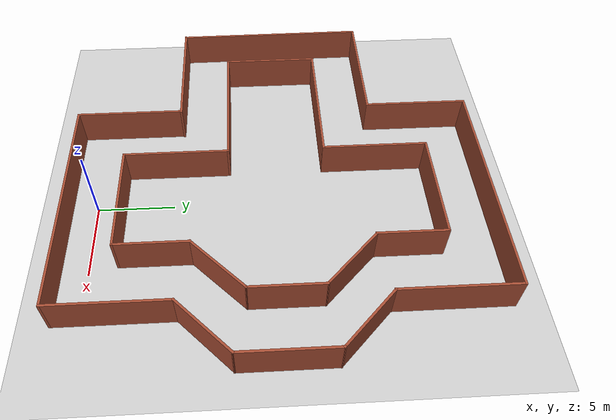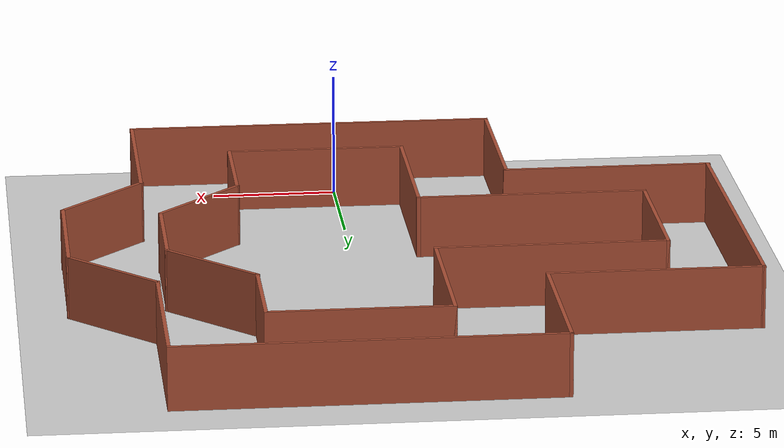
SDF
<sdf version="1.6">
 <world name="default">
  <light name="sun" type="directional">
   <pose>0 0 10 0 -0 0</pose>
   <diffuse>0.8 0.8 0.8 1</diffuse>
   <specular>0.1 0.1 0.1 1</specular>
   <attenuation>
    <range>1000</range>
    <constant>0.9</constant>
    <linear>0.01</linear>
    <quadratic>0.001</quadratic>
   </attenuation>
   <direction>-0.5 0.5 -1</direction>
  </light>
  <model name="ground_plane">
   <static>1</static>
   <link name="link">
    <collision name="collision">
     <geometry><plane><normal>0 0 1</normal><size>100 100</size></plane></geometry>
     <surface><friction><ode><mu>100</mu><mu2>50</mu2></ode></friction></surface>
    </collision>
    <visual name="visual">
     <cast_shadows>0</cast_shadows>
     <geometry><plane><normal>0 0 1</normal><size>100 100</size></plane></geometry>
     <material>
      <script><uri>file://media/materials/scripts/gazebo.material</uri><name>Gazebo/Grey</name></script>
     </material>
    </visual>
   </link>
  </model>
  <gravity>0 0 -9.8</gravity>
  <magnetic_field>6e-06 2.3e-05 -4.2e-05</magnetic_field>
  <atmosphere type="adiabatic"/>
  <physics name="default_physics" default="0" type="ode">
   <max_step_size>0.001</max_step_size>
   <real_time_factor>1</real_time_factor>
   <real_time_update_rate>1000</real_time_update_rate>
  </physics>
  <scene><ambient>0.4 0.4 0.4 1</ambient><background>0.7 0.7 0.7 1</background><shadows>1</shadows></scene>
  <spherical_coordinates>
   <surface_model>EARTH_WGS84</surface_model>
   <latitude_deg>0</latitude_deg>
   <longitude_deg>0</longitude_deg>
   <elevation>0</elevation>
   <heading_deg>0</heading_deg>
  </spherical_coordinates>
  <model name="Labirent">
   <pose>-1.6642 11.8093 0 0 -0 0</pose>
   <link name="Wall_10">
    <collision name="Wall_10_Collision">
     <geometry><box><size>4.75 0.15 2.5</size></box></geometry>
     <pose>0 0 1.25 0 -0 0</pose>
    </collision>
    <visual name="Wall_10_Visual">
     <pose>0 0 1.25 0 -0 0</pose>
     <geometry><box><size>4.75 0.15 2.5</size></box></geometry>
     <material>
      <script><uri>file://media/materials/scripts/gazebo.material</uri><name>Gazebo/Bricks</name></script>
      <ambient>1 1 1 1</ambient>
     </material>
    </visual>
    <pose>11.5847 4.55135 0 0 0 -0.785398</pose>
   </link>
   <link name="Wall_11">
    <collision name="Wall_11_Collision">
     <geometry><box><size>6 0.15 2.5</size></box></geometry>
     <pose>0 0 1.25 0 -0 0</pose>
    </collision>
    <visual name="Wall_11_Visual">
     <pose>0 0 1.25 0 -0 0</pose>
     <geometry><box><size>6 0.15 2.5</size></box></geometry>
     <material>
      <script><uri>file://media/materials/scripts/gazebo.material</uri><name>Gazebo/Bricks</name></script>
      <ambient>1 1 1 1</ambient>
     </material>
    </visual>
    <pose>13.211 1e-06 0 0 0 -1.5708</pose>
   </link>
   <link name="Wall_12">
    <collision name="Wall_12_Collision">
     <geometry><box><size>4.75 0.15 2.5</size></box></geometry>
     <pose>0 0 1.25 0 -0 0</pose>
    </collision>
    <visual name="Wall_12_Visual">
     <pose>0 0 1.25 0 -0 0</pose>
     <geometry><box><size>4.75 0.15 2.5</size></box></geometry>
     <material>
      <script><uri>file://media/materials/scripts/gazebo.material</uri><name>Gazebo/Bricks</name></script>
      <ambient>1 1 1 1</ambient>
     </material>
    </visual>
    <pose>11.5847 -4.55135 0 0 0 -2.35619</pose>
   </link>
   <link name="Wall_13">
    <collision name="Wall_13_Collision">
     <geometry><box><size>7.5 0.15 2.5</size></box></geometry>
     <pose>0 0 1.25 0 -0 0</pose>
    </collision>
    <visual name="Wall_13_Visual">
     <pose>0 0 1.25 0 -0 0</pose>
     <geometry><box><size>7.5 0.15 2.5</size></box></geometry>
     <material>
      <script><uri>file://media/materials/scripts/gazebo.material</uri><name>Gazebo/Bricks</name></script>
      <ambient>1 1 1 1</ambient>
     </material>
    </visual>
    <pose>9.95835 -9.85269 0 0 0 -1.5708</pose>
   </link>
   <link name="Wall_14">
    <collision name="Wall_14_Collision">
     <geometry><box><size>15 0.15 2.5</size></box></geometry>
     <pose>0 0 1.25 0 -0 0</pose>
    </collision>
    <visual name="Wall_14_Visual">
     <pose>0 0 1.25 0 -0 0</pose>
     <geometry><box><size>15 0.15 2.5</size></box></geometry>
     <material>
      <script><uri>file://media/materials/scripts/gazebo.material</uri><name>Gazebo/Bricks</name></script>
      <ambient>1 1 1 1</ambient>
     </material>
    </visual>
    <pose>2.53335 -13.5277 0 0 -0 3.14159</pose>
   </link>
   <link name="Wall_15">
    <collision name="Wall_15_Collision">
     <geometry><box><size>7.25 0.15 2.5</size></box></geometry>
     <pose>0 0 1.25 0 -0 0</pose>
    </collision>
    <visual name="Wall_15_Visual">
     <pose>0 0 1.25 0 -0 0</pose>
     <geometry><box><size>7.25 0.15 2.5</size></box></geometry>
     <material>
      <script><uri>file://media/materials/scripts/gazebo.material</uri><name>Gazebo/Bricks</name></script>
      <ambient>1 1 1 1</ambient>
     </material>
    </visual>
    <pose>-4.89165 -9.97769 0 0 -0 1.5708</pose>
   </link>
   <link name="Wall_17">
    <collision name="Wall_17_Collision">
     <geometry><box><size>6.5 0.15 2.5</size></box></geometry>
     <pose>0 0 1.25 0 -0 0</pose>
    </collision>
    <visual name="Wall_17_Visual">
     <pose>0 0 1.25 0 -0 0</pose>
     <geometry><box><size>6.5 0.15 2.5</size></box></geometry>
     <material>
      <script><uri>file://media/materials/scripts/gazebo.material</uri><name>Gazebo/Bricks</name></script>
      <ambient>1 1 1 1</ambient>
     </material>
    </visual>
    <pose>-10.0695 0.024492 0 0 -0 1.5708</pose>
   </link>
   <link name="Wall_18">
    <collision name="Wall_18_Collision">
     <geometry><box><size>9.25 0.15 2.5</size></box></geometry>
     <pose>0 0 1.25 0 -0 0</pose>
    </collision>
    <visual name="Wall_18_Visual">
     <pose>0 0 1.25 0 -0 0</pose>
     <geometry><box><size>9.25 0.15 2.5</size></box></geometry>
     <material>
      <script><uri>file://media/materials/scripts/gazebo.material</uri><name>Gazebo/Bricks</name></script>
      <ambient>1 1 1 1</ambient>
     </material>
    </visual>
    <pose>-5.51953 3.19949 0 0 -0 0</pose>
   </link>
   <link name="Wall_19">
    <collision name="Wall_19_Collision">
     <geometry><box><size>7 0.15 2.5</size></box></geometry>
     <pose>0 0 1.25 0 -0 0</pose>
    </collision>
    <visual name="Wall_19_Visual">
     <pose>0 0 1.25 0 -0 0</pose>
     <geometry><box><size>7 0.15 2.5</size></box></geometry>
     <material>
      <script><uri>file://media/materials/scripts/gazebo.material</uri><name>Gazebo/Bricks</name></script>
      <ambient>1 1 1 1</ambient>
     </material>
    </visual>
    <pose>-0.969534 6.62449 0 0 -0 1.5708</pose>
   </link>
   <link name="Wall_2">
    <collision name="Wall_2_Collision">
     <geometry><box><size>8.5 0.15 2.5</size></box></geometry>
     <pose>0 0 1.25 0 -0 0</pose>
    </collision>
    <visual name="Wall_2_Visual">
     <pose>0 0 1.25 0 -0 0</pose>
     <geometry><box><size>8.5 0.15 2.5</size></box></geometry>
     <material>
      <script><uri>file://media/materials/scripts/gazebo.material</uri><name>Gazebo/Bricks</name></script>
      <ambient>1 1 1 1</ambient>
     </material>
    </visual>
    <pose>-9.02619 -6.42231 0 0 -0 3.14159</pose>
   </link>
   <link name="Wall_20">
    <collision name="Wall_20_Collision">
     <geometry><box><size>7.25 0.15 2.5</size></box></geometry>
     <pose>0 0 1.25 0 -0 0</pose>
    </collision>
    <visual name="Wall_20_Visual">
     <pose>0 0 1.25 0 -0 0</pose>
     <geometry><box><size>7.25 0.15 2.5</size></box></geometry>
     <material>
      <script><uri>file://media/materials/scripts/gazebo.material</uri><name>Gazebo/Bricks</name></script>
      <ambient>1 1 1 1</ambient>
     </material>
    </visual>
    <pose>2.58047 10.0495 0 0 -0 0</pose>
   </link>
   <link name="Wall_21">
    <collision name="Wall_21_Collision">
     <geometry><box><size>4.5 0.15 2.5</size></box></geometry>
     <pose>0 0 1.25 0 -0 0</pose>
    </collision>
    <visual name="Wall_21_Visual">
     <pose>0 0 1.25 0 -0 0</pose>
     <geometry><box><size>4.5 0.15 2.5</size></box></geometry>
     <material>
      <script><uri>file://media/materials/scripts/gazebo.material</uri><name>Gazebo/Bricks</name></script>
      <ambient>1 1 1 1</ambient>
     </material>
    </visual>
    <pose>6.13047 7.87449 0 0 0 -1.5708</pose>
   </link>
   <link name="Wall_22">
    <collision name="Wall_22_Collision">
     <geometry><box><size>4.75 0.15 2.5</size></box></geometry>
     <pose>0 0 1.25 0 -0 0</pose>
    </collision>
    <visual name="Wall_22_Visual">
     <pose>0 0 1.25 0 -0 0</pose>
     <geometry><box><size>4.75 0.15 2.5</size></box></geometry>
     <material>
      <script><uri>file://media/materials/scripts/gazebo.material</uri><name>Gazebo/Bricks</name></script>
      <ambient>1 1 1 1</ambient>
     </material>
    </visual>
    <pose>7.75681 4.07315 0 0 0 -0.785398</pose>
   </link>
   <link name="Wall_23">
    <collision name="Wall_23_Collision">
     <geometry><box><size>4.75 0.15 2.5</size></box></geometry>
     <pose>0 0 1.25 0 -0 0</pose>
    </collision>
    <visual name="Wall_23_Visual">
     <pose>0 0 1.25 0 -0 0</pose>
     <geometry><box><size>4.75 0.15 2.5</size></box></geometry>
     <material>
      <script><uri>file://media/materials/scripts/gazebo.material</uri><name>Gazebo/Bricks</name></script>
      <ambient>1 1 1 1</ambient>
     </material>
    </visual>
    <pose>9.38316 0.146801 0 0 0 -1.5708</pose>
   </link>
   <link name="Wall_24">
    <collision name="Wall_24_Collision">
     <geometry><box><size>4.75 0.15 2.5</size></box></geometry>
     <pose>0 0 1.25 0 -0 0</pose>
    </collision>
    <visual name="Wall_24_Visual">
     <pose>0 0 1.25 0 -0 0</pose>
     <geometry><box><size>4.75 0.15 2.5</size></box></geometry>
     <material>
      <script><uri>file://media/materials/scripts/gazebo.material</uri><name>Gazebo/Bricks</name></script>
      <ambient>1 1 1 1</ambient>
     </material>
    </visual>
    <pose>7.75681 -3.77955 0 0 0 -2.35619</pose>
   </link>
   <link name="Wall_25">
    <collision name="Wall_25_Collision">
     <geometry><box><size>4.75 0.15 2.5</size></box></geometry>
     <pose>0 0 1.25 0 -0 0</pose>
    </collision>
    <visual name="Wall_25_Visual">
     <pose>0 0 1.25 0 -0 0</pose>
     <geometry><box><size>4.75 0.15 2.5</size></box></geometry>
     <material>
      <script><uri>file://media/materials/scripts/gazebo.material</uri><name>Gazebo/Bricks</name></script>
      <ambient>1 1 1 1</ambient>
     </material>
    </visual>
    <pose>6.13047 -7.70589 0 0 0 -1.5708</pose>
   </link>
   <link name="Wall_27">
    <collision name="Wall_27_Collision">
     <geometry><box><size>7.25 0.15 2.5</size></box></geometry>
     <pose>0 0 1.25 0 -0 0</pose>
    </collision>
    <visual name="Wall_27_Visual">
     <pose>0 0 1.25 0 -0 0</pose>
     <geometry><box><size>7.25 0.15 2.5</size></box></geometry>
     <material>
      <script><uri>file://media/materials/scripts/gazebo.material</uri><name>Gazebo/Bricks</name></script>
      <ambient>1 1 1 1</ambient>
     </material>
    </visual>
    <pose>2.58047 -10.0059 0 0 -0 3.14159</pose>
   </link>
   <link name="Wall_28">
    <collision name="Wall_28_Collision">
     <geometry><box><size>7 0.15 2.5</size></box></geometry>
     <pose>0 0 1.25 0 -0 0</pose>
    </collision>
    <visual name="Wall_28_Visual">
     <pose>0 0 1.25 0 -0 0</pose>
     <geometry><box><size>7 0.15 2.5</size></box></geometry>
     <material>
      <script><uri>file://media/materials/scripts/gazebo.material</uri><name>Gazebo/Bricks</name></script>
      <ambient>1 1 1 1</ambient>
     </material>
    </visual>
    <pose>-0.969534 -6.58089 0 0 -0 1.5708</pose>
   </link>
   <link name="Wall_29">
    <collision name="Wall_29_Collision">
     <geometry><box><size>9.25 0.15 2.5</size></box></geometry>
     <pose>0 0 1.25 0 -0 0</pose>
    </collision>
    <visual name="Wall_29_Visual">
     <pose>0 0 1.25 0 -0 0</pose>
     <geometry><box><size>9.25 0.15 2.5</size></box></geometry>
     <material>
      <script><uri>file://media/materials/scripts/gazebo.material</uri><name>Gazebo/Bricks</name></script>
      <ambient>1 1 1 1</ambient>
     </material>
    </visual>
    <pose>-5.51953 -3.15589 0 0 -0 3.14159</pose>
   </link>
   <link name="Wall_3">
    <collision name="Wall_3_Collision">
     <geometry><box><size>13.25 0.15 2.5</size></box></geometry>
     <pose>0 0 1.25 0 -0 0</pose>
    </collision>
    <visual name="Wall_3_Visual">
     <pose>0 0 1.25 0 -0 0</pose>
     <geometry><box><size>13.25 0.15 2.5</size></box></geometry>
     <material>
      <script><uri>file://media/materials/scripts/gazebo.material</uri><name>Gazebo/Bricks</name></script>
      <ambient>1 1 1 1</ambient>
     </material>
    </visual>
    <pose>-13.2012 0.127692 0 0 -0 1.57697</pose>
   </link>
   <link name="Wall_4">
    <collision name="Wall_4_Collision">
     <geometry><box><size>8.5 0.15 2.5</size></box></geometry>
     <pose>0 0 1.25 0 -0 0</pose>
    </collision>
    <visual name="Wall_4_Visual">
     <pose>0 0 1.25 0 -0 0</pose>
     <geometry><box><size>8.5 0.15 2.5</size></box></geometry>
     <material>
      <script><uri>file://media/materials/scripts/gazebo.material</uri><name>Gazebo/Bricks</name></script>
      <ambient>1 1 1 1</ambient>
     </material>
    </visual>
    <pose>-9.06665 6.67769 0 0 -0 0</pose>
   </link>
   <link name="Wall_7">
    <collision name="Wall_7_Collision">
     <geometry><box><size>7 0.15 2.5</size></box></geometry>
     <pose>0 0 1.25 0 -0 0</pose>
    </collision>
    <visual name="Wall_7_Visual">
     <pose>0 0 1.25 0 -0 0</pose>
     <geometry><box><size>7 0.15 2.5</size></box></geometry>
     <material>
      <script><uri>file://media/materials/scripts/gazebo.material</uri><name>Gazebo/Bricks</name></script>
      <ambient>1 1 1 1</ambient>
     </material>
    </visual>
    <pose>-4.89165 10.1027 0 0 -0 1.5708</pose>
   </link>
   <link name="Wall_8">
    <collision name="Wall_8_Collision">
     <geometry><box><size>15 0.15 2.5</size></box></geometry>
     <pose>0 0 1.25 0 -0 0</pose>
    </collision>
    <visual name="Wall_8_Visual">
     <pose>0 0 1.25 0 -0 0</pose>
     <geometry><box><size>15 0.15 2.5</size></box></geometry>
     <material>
      <script><uri>file://media/materials/scripts/gazebo.material</uri><name>Gazebo/Bricks</name></script>
      <ambient>1 1 1 1</ambient>
     </material>
    </visual>
    <pose>2.53335 13.5277 0 0 -0 0</pose>
   </link>
   <link name="Wall_9">
    <collision name="Wall_9_Collision">
     <geometry><box><size>7.5 0.15 2.5</size></box></geometry>
     <pose>0 0 1.25 0 -0 0</pose>
    </collision>
    <visual name="Wall_9_Visual">
     <pose>0 0 1.25 0 -0 0</pose>
     <geometry><box><size>7.5 0.15 2.5</size></box></geometry>
     <material>
      <script><uri>file://media/materials/scripts/gazebo.material</uri><name>Gazebo/Bricks</name></script>
      <ambient>1 1 1 1</ambient>
     </material>
    </visual>
    <pose>9.95835 9.85269 0 0 0 -1.5708</pose>
   </link>
   <static>1</static>
  </model>
 </world>
</sdf>
